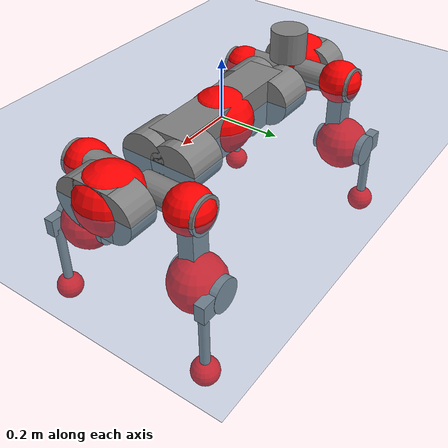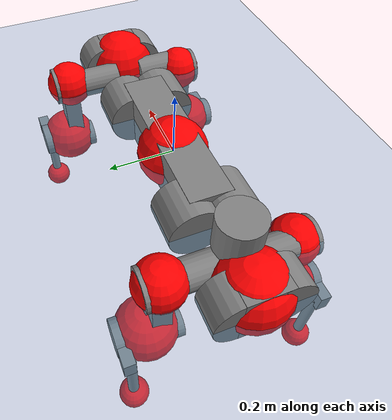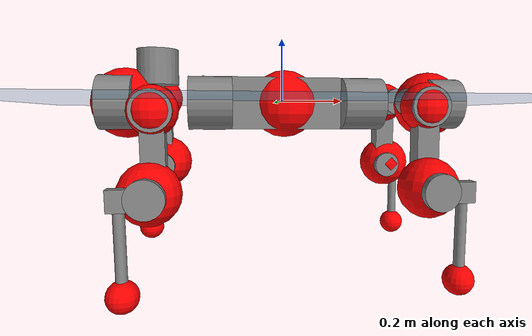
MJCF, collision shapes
<mujoco model="anymal_c">
  <compiler angle="radian" assetdir="assets" balanceinertia="true" inertiafromgeom="false"/>

  <option timestep="0.005" density="1.2" viscosity="2e-05"/>

  <size nkey="1"/>

  <visual>
    <quality shadowsize="8192"/>
    <map shadowclip="0.5"/>
  </visual>

  <default>
    <default class="/">
      <material specular="0" shininess="0.25"/>
      <geom contype="0" conaffinity="0" group="1" solref="-1000 -80"/>
      <site size="0.01 0.005 0.005" group="5"/>
      <general forcelimited="true" forcerange="-80 80" biastype="affine" gainprm="80" biasprm="0 -80 -2"/>
      <default class="anymal_c">
        <joint armature="0.01" damping="0.01" frictionloss="0.1"/>
        <default class="visual">
          <geom type="mesh" group="2"/>
          <default class="visual_zflip"/>
        </default>
        <default class="collision">
          <geom type="cylinder" group="3"/>
          <default class="foot">
            <geom size="0.03 0 0" type="sphere" condim="6" priority="1" friction="0.8 0.02 0.01" solimp="0.015 1 0.03"/>
          </default>
        </default>
      </default>
      <default class="reward_collision_sphere">
        <geom group="5" rgba="1 0 0 1"/>
      </default>
    </default>
  </default>

  <asset>
    <texture type="skybox" colorspace="auto" name="//unnamed_texture_0" builtin="gradient" rgb1="0.95 0.95 0.95" rgb2="0.95 0.95 0.95" width="100" height="600"/>
    <texture type="2d" colorspace="auto" name="texplane" builtin="checker" rgb1="0.345 0.575 0.748" rgb2="0.345 0.575 0.748" markrgb="1 1 1" width="512" height="512"/>
    <texture type="2d" colorspace="linear" name="base" file="base.png"/>
    <texture type="2d" colorspace="linear" name="top_shell" file="top_shell.png"/>
    <texture type="2d" colorspace="linear" name="bottom_shell" file="bottom_shell.png"/>
    <texture type="2d" colorspace="linear" name="remote" file="remote.png"/>
    <texture type="2d" colorspace="linear" name="hatch" file="hatch.png"/>
    <texture type="2d" colorspace="linear" name="handle" file="handle.png"/>
    <texture type="2d" colorspace="linear" name="face" file="face.png"/>
    <texture type="2d" colorspace="linear" name="battery" file="battery.png"/>
    <texture type="2d" colorspace="linear" name="lidar_cage" file="lidar_cage.png"/>
    <texture type="2d" colorspace="linear" name="depth_camera" file="depth_camera.png"/>
    <texture type="2d" colorspace="linear" name="wide_angle_camera" file="wide_angle_camera.png"/>
    <texture type="2d" colorspace="linear" name="lidar" file="lidar.png"/>
    <texture type="2d" colorspace="linear" name="drive" file="drive.png"/>
    <texture type="2d" colorspace="linear" name="hip_l" file="hip_l.png"/>
    <texture type="2d" colorspace="linear" name="shank_l" file="shank_l.png"/>
    <texture type="2d" colorspace="linear" name="foot" file="foot.png"/>
    <texture type="2d" colorspace="linear" name="thigh" file="thigh.png"/>
    <texture type="2d" colorspace="linear" name="shank_r" file="shank_r.png"/>
    <texture type="2d" colorspace="linear" name="hip_r" file="hip_r.png"/>
    <material name="MatPlane" class="/" texture="texplane" texuniform="true" texrepeat="2 2" specular="0.9" shininess="0.5"/>
    <material name="black_plastic" class="/" rgba="0.007 0.007 0.007 1"/>
    <material name="green" class="/" rgba="0.052 0.178 0.033 1"/>
    <material name="red" class="/" rgba="0.178 0.006 0.005 1"/>
    <material name="yellow" class="/" rgba="0.178 0.119 0.006 1"/>
    <material name="lwl" class="/" rgba="0.8 0.8 0.8 1"/>
    <material name="base" class="/" texture="base"/>
    <material name="top_shell" class="/" texture="top_shell"/>
    <material name="bottom_shell" class="/" texture="bottom_shell"/>
    <material name="hip_l" class="/" texture="hip_l"/>
    <material name="thigh" class="/" texture="thigh"/>
    <material name="shank_l" class="/" texture="shank_l"/>
    <material name="foot" class="/" texture="foot"/>
    <material name="hip_r" class="/" texture="hip_r"/>
    <material name="shank" class="/" texture="shank_r"/>
    <material name="hatch" class="/" texture="hatch"/>
    <material name="remote" class="/" texture="remote"/>
    <material name="handle" class="/" texture="handle"/>
    <material name="face" class="/" texture="face"/>
    <material name="depth_camera" class="/" texture="depth_camera"/>
    <material name="wide_angle_camera" class="/" texture="wide_angle_camera"/>
    <material name="battery" class="/" texture="battery"/>
    <material name="lidar_cage" class="/" texture="lidar_cage"/>
    <material name="lidar" class="/" texture="lidar"/>
    <material name="drive" class="/" texture="drive"/>
    <mesh name="base_0" class="/" file="base_0.obj"/>
    <mesh name="base_1" class="/" file="base_1.obj"/>
    <mesh name="base_2" class="/" file="base_2.obj"/>
    <mesh name="base_3" class="/" file="base_3.obj"/>
    <mesh name="base_4" class="/" file="base_4.obj"/>
    <mesh name="base_5" class="/" file="base_5.obj"/>
    <mesh name="top_shell" class="/" file="top_shell.obj"/>
    <mesh name="bottom_shell" class="/" file="bottom_shell.obj"/>
    <mesh name="remote" class="/" file="remote.obj"/>
    <mesh name="handle" class="/" file="handle.obj"/>
    <mesh name="face" class="/" file="face.obj"/>
    <mesh name="wide_angle_camera" class="/" file="wide_angle_camera.obj"/>
    <mesh name="depth_camera" class="/" file="depth_camera.obj"/>
    <mesh name="battery" class="/" file="battery.obj"/>
    <mesh name="lidar_cage" class="/" file="lidar_cage.obj"/>
    <mesh name="lidar" class="/" file="lidar.obj"/>
    <mesh name="drive" class="/" file="drive.obj"/>
    <mesh name="hip_l" class="/" file="hip_l.obj"/>
    <mesh name="thigh" class="/" file="thigh.obj"/>
    <mesh name="shank_l" class="/" file="shank_l.obj"/>
    <mesh name="foot" class="/" file="foot.obj"/>
    <mesh name="hip_r" class="/" file="hip_r.obj"/>
    <mesh name="hatch" class="/" file="hatch.obj"/>
    <mesh name="shank_r" class="/" file="shank_r.obj"/>
  </asset>

  <worldbody>
    <geom name="floor" class="/" size="100 100 0.125" type="plane" group="0" material="MatPlane"/>
    <light name="toplight_shadow" class="/" pos="0 0 5" dir="0.0990148 0.0990148 -0.990148" type="directional" ambient="0.04 0.04 0.04" diffuse="0.55 0.55 0.55" specular="0.12 0.12 0.12"/>
    <light name="toplight_fill" class="/" pos="0 0 5" dir="0.0990148 0.0990148 -0.990148" type="directional" castshadow="false" ambient="0.04 0.04 0.04" diffuse="0.3 0.3 0.3" specular="0.08 0.08 0.08"/>
    <body name="trunk" childclass="anymal_c" pos="0.00730015 -0.00105752 -0.00861551" quat="0.999988 0.00171433 0.000817051 -0.00456632">
      <inertial pos="0.0212542 0.0153692 0.0513951" quat="0.496447 0.498732 0.478267 0.525422" mass="10.7013" diaginertia="0.96562 0.187098 0.0752141"/>
      <joint name="//unnamed_joint_0" type="free" armature="0" damping="0" frictionloss="0"/>
      <geom name="//unnamed_geom_1" class="visual" material="green" mesh="base_0"/>
      <geom name="//unnamed_geom_2" class="visual" material="yellow" mesh="base_1"/>
      <geom name="//unnamed_geom_3" class="visual" material="red" mesh="base_2"/>
      <geom name="//unnamed_geom_4" class="visual" material="black_plastic" mesh="base_3"/>
      <geom name="//unnamed_geom_5" class="visual" material="lwl" mesh="base_4"/>
      <geom name="//unnamed_geom_6" class="visual" material="base" mesh="base_5"/>
      <geom name="trunk_1" class="collision" size="0.263011 0.0634854 0.0816241" type="box"/>
      <geom name="trunk_2" class="collision" size="0.0816241 0.0657527" pos="0.239481 0.0552463 0" quat="0.707107 0 0.707107 0"/>
      <geom name="trunk_3" class="collision" size="0.0816241 0.0657527" pos="-0.239481 0.0552463 0" quat="0.707107 0 0.707107 0"/>
      <geom name="trunk_4" class="collision" size="0.0816241 0.0657527" pos="0.239481 -0.0552463 0" quat="0.707107 0 0.707107 0"/>
      <geom name="trunk_5" class="collision" size="0.0816241 0.0657527" pos="-0.239481 -0.0552463 0" quat="0.707107 0 0.707107 0"/>
      <geom name="//unnamed_geom_12" class="visual" material="top_shell" mesh="top_shell"/>
      <geom name="//unnamed_geom_13" class="visual" material="bottom_shell" mesh="bottom_shell"/>
      <geom name="//unnamed_geom_14" class="visual" material="remote" mesh="remote"/>
      <geom name="//unnamed_geom_15" class="visual" material="handle" mesh="handle"/>
      <geom name="//unnamed_geom_16" class="visual" pos="0.45639 0 0" quat="1 0 0 0" material="face" mesh="face"/>
      <geom name="trunk_6" class="collision" size="0.0498814 0.0634854 0.0816241" pos="0.516949 0 0" type="box"/>
      <geom name="//unnamed_geom_18" class="collision" size="0.0816241 0.0498814" pos="0.516949 0.0552463 0" quat="0.707107 0 0.707107 0"/>
      <geom name="//unnamed_geom_19" class="collision" size="0.0816241 0.0498814" pos="0.516949 -0.0552463 0" quat="0.707107 0 0.707107 0"/>
      <geom name="//unnamed_geom_20" class="visual" pos="0.508294 0 -0.0221946" quat="0.965926 0 0.258819 0" material="depth_camera" mesh="depth_camera"/>
      <geom name="//unnamed_geom_21" class="visual" pos="0.564845 0 0.0124327" material="wide_angle_camera" mesh="wide_angle_camera"/>
      <geom name="//unnamed_geom_22" class="visual_zflip" pos="-0.45639 0 0" quat="0 0 0 1" material="face" mesh="face"/>
      <geom name="trunk_7" class="collision" size="0.0498814 0.0634854 0.0816241" pos="-0.516949 0 0" quat="0 0 0 1" type="box"/>
      <geom name="//unnamed_geom_24" class="collision" size="0.0816241 0.0498814" pos="-0.516949 -0.0552463 0" quat="0 -0.707107 0 0.707107"/>
      <geom name="//unnamed_geom_25" class="collision" size="0.0816241 0.0498814" pos="-0.516949 0.0552463 0" quat="0 -0.707107 0 0.707107"/>
      <geom name="//unnamed_geom_26" class="visual" pos="-0.508294 0 -0.0221946" quat="0 -0.258819 0 0.965926" material="depth_camera" mesh="depth_camera"/>
      <geom name="//unnamed_geom_27" class="visual_zflip" pos="-0.564845 0 0.0124327" quat="0 0 0 1" material="wide_angle_camera" mesh="wide_angle_camera"/>
      <geom name="//unnamed_geom_28" class="visual" material="battery" mesh="battery"/>
      <geom name="//unnamed_geom_29" class="visual" pos="0 0.0562417 0.0261825" quat="0.683013 -0.183013 0.183013 0.683013" material="depth_camera" mesh="depth_camera"/>
      <geom name="//unnamed_geom_30" class="visual" pos="0 -0.0562417 0.0261825" quat="0.683013 0.183013 0.183013 -0.683013" material="depth_camera" mesh="depth_camera"/>
      <geom name="//unnamed_geom_31" class="visual" pos="-0.400787 0 0.0610423" quat="1 0 0 0" material="lidar_cage" mesh="lidar_cage"/>
      <geom name="trunk_8" class="collision" size="0.0634854 0.0544161" pos="-0.400787 0 0.110873"/>
      <geom name="//unnamed_geom_33" class="visual" pos="-0.400787 -0.000122509 0.118098" quat="0.707107 0 0 -0.707107" material="lidar" mesh="lidar"/>
      <geom name="//unnamed_geom_34" class="visual" pos="0.330209 0.0820949 -7.11985e-10" quat="0.258819 0.965926 0 0" material="drive" mesh="drive"/>
      <geom name="//unnamed_geom_35" class="visual" pos="0.330209 -0.0820949 7.11985e-10" quat="0.258819 -0.965926 0 0" material="drive" mesh="drive"/>
      <geom name="//unnamed_geom_36" class="visual" pos="-0.330209 0.0820949 7.11985e-10" quat="0 0 0.965926 -0.258819" material="drive" mesh="drive"/>
      <geom name="//unnamed_geom_37" class="visual" pos="-0.330209 -0.0820949 -7.11985e-10" quat="0 0 -0.965926 -0.258819" material="drive" mesh="drive"/>
      <geom name="//unnamed_geom_38" class="visual" pos="0.127723 0 0.060627" quat="1 0 0 0" material="hatch" mesh="hatch"/>
      <geom name="//unnamed_geom_39" class="reward_collision_sphere" size="0.108832"/>
      <geom name="//unnamed_geom_40" class="reward_collision_sphere" size="0.108832" pos="0.495478 0 0"/>
      <geom name="//unnamed_geom_41" class="reward_collision_sphere" size="0.108832" pos="-0.495478 0 0"/>
      <site name="imu" pos="0.191224 0.00693759 0.120875" size="0.00906934"/>
      <camera name="track" pos="0 -1.57847 0" quat="0.707107 0.707107 0 0" mode="trackcom"/>
      <camera name="ego_camera" pos="0.495478 0 -0.0332203" quat="-0.5 -0.5 0.5 0.5"/>
      <body name="LF_HIP" pos="0.344093 0.0964912 0.0103613" quat="0.26055 0.965459 -0.000934547 0.00164152">
        <inertial pos="0.0627341 0.00168411 -0.00265611" quat="-0.125994 0.709381 -0.137198 0.679765" mass="2.21255" diaginertia="0.0113383 0.00219006 0.00158417"/>
        <joint name="LF_HAA" pos="0 0 0" axis="0.99988 0.00588982 -0.0143615" stiffness="0.0625039" range="-0.712518 0.298891" armature="0.00761314" damping="0" frictionloss="0.147657"/>
        <geom name="//unnamed_geom_42" class="visual" pos="0 -4.18828e-05 6.87922e-06" quat="0.258819 -0.965926 0 0" material="hip_l" mesh="hip_l"/>
        <geom name="//unnamed_geom_43" class="visual" pos="0.0659537 -0.0758258 -0.0440834" quat="0.183013 -0.683013 0.683013 0.183013" material="drive" mesh="drive"/>
        <geom name="//unnamed_geom_44" class="collision" size="0.0453467 0.0634854" pos="0.0659537 -0.00943907 -0.00573465" quat="-0.353553 -0.612372 0.612372 -0.353553"/>
        <body name="LF_THIGH" pos="0.0772283 -0.0746143 -0.0450415" quat="0.188522 -0.679112 0.684313 0.187035">
          <inertial pos="0.0308317 8.94925e-05 -0.215109" quat="0.993987 0.0238624 -0.103926 0.0249109" mass="2.8065" diaginertia="0.0519588 0.0117962 0.00156909"/>
          <joint name="LF_HFE" pos="0 0 0" axis="0.999394 -0.00444436 0.0345316" stiffness="0.0259664" range="-3.44995 2.89101" armature="0.0121711" damping="0" frictionloss="0.142068"/>
          <geom name="//unnamed_geom_45" class="visual" pos="0.00620418 9.77634e-06 0" quat="0.707107 0 0 -0.707107" material="thigh" mesh="thigh"/>
          <geom name="//unnamed_geom_46" class="collision" size="0.0589507 0.0362774" pos="0.0440425 0 0" quat="0.5 0.5 -0.5 -0.5"/>
          <geom name="//unnamed_geom_47" class="collision" size="0.03401 0.027208 0.128163" pos="0.0330319 0 -0.117362" quat="0.707107 0 0 -0.707107" type="box"/>
          <geom name="//unnamed_geom_48" class="visual" pos="0.110437 0 -0.236695" quat="1 0 0 0" material="drive" mesh="drive"/>
          <geom name="//unnamed_geom_49" class="collision" size="0.0453467 0.0634854" pos="0.0333622 0 -0.236695" quat="0.707107 0 0.707107 0"/>
          <geom name="//unnamed_geom_50" class="reward_collision_sphere" size="0.0725547" pos="0.0275266 0 0"/>
          <body name="LF_SHANK" pos="0.111618 -0.0158575 -0.234085" quat="0.999994 -2.08724e-05 0.00201365 0.00279216">
            <inertial pos="0.00792682 -0.0547978 -0.0567326" quat="0.992953 -0.117727 -0.00286588 -0.0132611" mass="0.461697" diaginertia="0.0209442 0.00286816 0.000436529"/>
            <joint name="LF_KFE" pos="0 0 0" axis="0.999745 -0.0192071 0.0118967" stiffness="0.0756739" range="-3.3877 3.09512" armature="0.00564294" damping="0" frictionloss="0.0803139"/>
            <geom name="//unnamed_geom_51" class="visual" pos="0.00202305 0.010787 0" quat="0.707107 0 0 -0.707107" material="shank_l" mesh="shank_l"/>
            <geom name="LF_kfe_act" class="collision" size="0.0544161 0.0181387" pos="0.0220213 0 0" quat="0.5 0.5 -0.5 -0.5"/>
            <geom name="//unnamed_geom_53" class="collision" size="0.0521478 0.030609 0.0172318" pos="0.0220213 -0.0453801 0" quat="0.5 0.5 -0.5 -0.5" type="box"/>
            <geom name="//unnamed_geom_54" class="visual" pos="0.0143684 -0.0659368 -0.280687" quat="0.382683 0 0 -0.92388" material="foot" mesh="foot"/>
            <geom name="LF_calf" class="collision" size="0.0158714 0.128106" pos="0.0143689 -0.0694131 -0.140343" quat="0.707107 0 0 -0.707107"/>
            <geom name="LF_foot" class="foot" size="0.0254131" pos="0.0143689 -0.0694131 -0.262" quat="0.707107 0 0 -0.707107"/>
            <geom name="//unnamed_geom_57" class="reward_collision_sphere" size="0.0906934" pos="-0.0550531 0 0"/>
            <geom name="//unnamed_geom_58" class="reward_collision_sphere" size="0.0453467" pos="0.0143689 -0.0694131 -0.262"/>
            <site name="LF_foot" class="foot" pos="0.0143689 -0.0694131 -0.262" quat="0.707107 0 0 -0.707107" size="0.00906934"/>
          </body>
        </body>
      </body>
      <body name="RF_HIP" pos="0.347099 -0.0869286 0.00661504" quat="0.258924 -0.965898 -1.20617e-05 0.000225853">
        <inertial pos="0.0746008 0.0308224 0.00550752" quat="0.120962 0.719699 0.0563163 0.681344" mass="2.02271" diaginertia="0.0103612 0.00111133 0.00141187"/>
        <joint name="RF_HAA" pos="0 0 0" axis="0.997439 -0.0413443 -0.0583676" range="-0.60543 0.737717" armature="0.00735547" damping="0.0692627" frictionloss="0.0503201"/>
        <geom name="//unnamed_geom_59" class="visual" pos="0 4.18825e-05 6.8792e-06" quat="0.258819 0.965926 0 0" material="hip_r" mesh="hip_r"/>
        <geom name="//unnamed_geom_60" class="visual" pos="0.0659536 0.0758258 -0.0440834" quat="0.183013 0.683013 0.683013 -0.183013" material="drive" mesh="drive"/>
        <geom name="//unnamed_geom_61" class="collision" size="0.0453467 0.0634854" pos="0.0659537 0.00943907 -0.00573465" quat="-0.353553 0.612372 0.612372 0.353553"/>
        <body name="RF_THIGH" pos="0.0550295 0.0681427 -0.0199447" quat="0.17573 0.683472 0.68434 -0.183478">
          <inertial pos="0.0172994 0.00800973 -0.192725" quat="0.997336 0.022697 -0.0444204 0.0532248" mass="2.03304" diaginertia="0.0607327 0.011686 0.00141154"/>
          <joint name="RF_HFE" pos="0 0 0" axis="0.999934 0.0114224 0.00153119" stiffness="0.000884595" range="-3.31213 3.2662" armature="0.0140367" damping="0.0160229" frictionloss="0.047445"/>
          <geom name="//unnamed_geom_62" class="visual" pos="0.00620418 9.77634e-06 0" quat="0.707107 0 0 -0.707107" material="thigh" mesh="thigh"/>
          <geom name="//unnamed_geom_63" class="collision" size="0.0589507 0.0362774" pos="0.0440425 0 0" quat="0.5 0.5 0.5 0.5"/>
          <geom name="//unnamed_geom_64" class="collision" size="0.03401 0.027208 0.128163" pos="0.0330319 0 -0.117362" quat="0.707107 0 0 0.707107" type="box"/>
          <geom name="//unnamed_geom_65" class="visual" pos="0.110437 0 -0.236695" quat="1 0 0 0" material="drive" mesh="drive"/>
          <geom name="//unnamed_geom_66" class="collision" size="0.0453467 0.0634854" pos="0.0333622 0 -0.236695" quat="0.707107 0 0.707107 0"/>
          <geom name="//unnamed_geom_67" class="reward_collision_sphere" size="0.0725547" pos="0.0275266 0 0"/>
          <body name="RF_SHANK" pos="0.122046 -0.00137023 -0.241765" quat="0.999984 -0.00274575 0.0046418 0.00178176">
            <inertial pos="0.0199037 0.0490096 -0.0669521" quat="0.979883 0.18263 -0.00738506 0.0801336" mass="0.309485" diaginertia="0.0119523 0.00262255 0.000357444"/>
            <joint name="RF_KFE" pos="0 0 0" axis="0.999984 0.00374954 0.00433831" stiffness="0.0820145" range="-2.80309 3.37425" armature="0.0018767" damping="0" frictionloss="0.0456115"/>
            <geom name="//unnamed_geom_68" class="visual" pos="0.00202304 -0.010787 0" quat="0.707107 0 0 0.707107" material="shank" mesh="shank_r"/>
            <geom name="RF_kfe_act" class="collision" size="0.0544161 0.0181387" pos="0.0220213 0 0" quat="0.5 0.5 0.5 0.5"/>
            <geom name="//unnamed_geom_70" class="collision" size="0.0521478 0.030609 0.0172318" pos="0.0220213 0.0453801 0" quat="0.5 0.5 0.5 0.5" type="box"/>
            <geom name="//unnamed_geom_71" class="visual" pos="0.0143694 0.0659368 -0.280687" quat="0.382683 0 0 0.92388" material="foot" mesh="foot"/>
            <geom name="RF_calf" class="collision" size="0.0158714 0.128106" pos="0.0143689 0.0694131 -0.140343" quat="0.707107 0 0 0.707107"/>
            <geom name="RF_foot" class="foot" size="0.0413352" pos="0.0143689 0.0694131 -0.262" quat="0.707107 0 0 0.707107"/>
            <geom name="//unnamed_geom_74" class="reward_collision_sphere" size="0.0906934" pos="-0.0550531 0 0"/>
            <geom name="//unnamed_geom_75" class="reward_collision_sphere" size="0.0453467" pos="0.0143689 0.0694131 -0.262"/>
            <site name="RF_foot" class="foot" pos="0.0143689 0.0694131 -0.262" quat="0.707107 0 0 0.707107" size="0.00906934"/>
          </body>
        </body>
      </body>
      <body name="LH_HIP" pos="-0.345859 0.0949995 0.0151528" quat="0.00152866 -0.000327659 0.965857 -0.259071">
        <inertial pos="0.0627325 -0.000732145 0.0103868" quat="0.15133 0.72342 0.0966234 0.666653" mass="1.65373" diaginertia="0.00571981 0.00128741 0.00116582"/>
        <joint name="LH_HAA" pos="0 0 0" axis="0.997444 0.0641149 0.0315308" stiffness="0.0478136" range="-0.448786 0.546918" armature="0.0104302" damping="0.0878946" frictionloss="0.0948384"/>
        <geom name="//unnamed_geom_76" class="visual" pos="0 4.18825e-05 6.8792e-06" quat="-0.258819 -0.965926 0 0" material="hip_r" mesh="hip_r"/>
        <geom name="//unnamed_geom_77" class="visual" pos="0.0659536 0.0758258 -0.0440834" quat="0.183013 0.683013 0.683013 -0.183013" material="drive" mesh="drive"/>
        <geom name="//unnamed_geom_78" class="collision" size="0.0453467 0.0634854" pos="0.0659537 0.00943907 -0.00573465" quat="-0.353553 0.612372 0.612372 0.353553"/>
        <body name="LH_THIGH" pos="0.0672929 0.0668489 -0.0446868" quat="0.181773 0.680637 0.684887 -0.186067">
          <inertial pos="0.0524091 -0.00844398 -0.186759" quat="0.992148 -0.00973762 -0.0778416 0.0974076" mass="2.97564" diaginertia="0.0696823 0.00891633 0.0017078"/>
          <joint name="LH_HFE" pos="0 0 0" axis="0.999986 -0.0019696 0.00499936" range="-2.92721 3.38895" armature="0.00622503" damping="0.0759903" frictionloss="0.0940666"/>
          <geom name="//unnamed_geom_79" class="visual" pos="0.00620418 9.77634e-06 0" quat="0.707107 0 0 -0.707107" material="thigh" mesh="thigh"/>
          <geom name="//unnamed_geom_80" class="collision" size="0.0589507 0.0362774" pos="0.0440425 0 0" quat="0.5 0.5 -0.5 -0.5"/>
          <geom name="//unnamed_geom_81" class="collision" size="0.03401 0.027208 0.128163" pos="0.0330319 0 -0.117362" quat="0.707107 0 0 -0.707107" type="box"/>
          <geom name="//unnamed_geom_82" class="visual" pos="0.110437 0 -0.236695" quat="1 0 0 0" material="drive" mesh="drive"/>
          <geom name="//unnamed_geom_83" class="collision" size="0.0453467 0.0634854" pos="0.0333622 0 -0.236695" quat="0.707107 0 0.707107 0"/>
          <geom name="//unnamed_geom_84" class="reward_collision_sphere" size="0.0725547" pos="0.0275266 0 0"/>
          <body name="LH_SHANK" pos="0.119675 -0.00900939 -0.228532" quat="1 -6.5025e-06 -1.48184e-05 -4.73315e-05">
            <inertial pos="-0.00465728 0.0327325 -0.0586994" quat="0.985093 0.167237 0.0294826 0.0274457" mass="0.339153" diaginertia="0.0146101 0.00175395 0.00030513"/>
            <joint name="LH_KFE" pos="0 0 0" axis="0.999799 0.019275 -0.00549706" range="-3.44469 3.39714" armature="0.00145301" damping="0" frictionloss="0.157406"/>
            <geom name="//unnamed_geom_85" class="visual" pos="0.00202304 -0.010787 0" quat="-0.707107 0 0 -0.707107" material="shank" mesh="shank_r"/>
            <geom name="LH_kfe_act" class="collision" size="0.0544161 0.0181387" pos="0.0220213 0 0" quat="0.5 0.5 -0.5 -0.5"/>
            <geom name="//unnamed_geom_87" class="collision" size="0.0521478 0.030609 0.0172318" pos="0.0220213 0.0453801 0" quat="0.5 0.5 -0.5 -0.5" type="box"/>
            <geom name="//unnamed_geom_88" class="visual" pos="0.0143694 0.0659368 -0.280687" quat="-0.382683 0 0 -0.92388" material="foot" mesh="foot"/>
            <geom name="LH_calf" class="collision" size="0.0158714 0.128106" pos="0.0143689 0.0694131 -0.140343" quat="0.707107 0 0 -0.707107"/>
            <geom name="LH_foot" class="foot" size="0.0178546" pos="0.0143689 0.0694131 -0.262" quat="0.707107 0 0 -0.707107"/>
            <geom name="//unnamed_geom_91" class="reward_collision_sphere" size="0.0906934" pos="-0.0550531 0 0"/>
            <geom name="//unnamed_geom_92" class="reward_collision_sphere" size="0.0453467" pos="0.0143689 0.0694131 -0.262"/>
            <site name="LH_foot" class="foot" pos="0.0143689 0.0694131 -0.262" quat="0.707107 0 0 -0.707107" size="0.00906934"/>
          </body>
        </body>
      </body>
      <body name="RH_HIP" pos="-0.34873 -0.0856924 -0.00947237" quat="-0.000188509 -0.00133288 -0.966275 -0.257508">
        <inertial pos="0.0740431 -0.0230814 0.0102589" quat="-0.0445855 0.684833 -0.151536 0.711374" mass="2.07678" diaginertia="0.0114944 0.00179555 0.00160938"/>
        <joint name="RH_HAA" pos="0 0 0" axis="0.99668 0.0483362 -0.0655164" range="-0.403836 0.271938" armature="0.0136602" damping="0.0640393" frictionloss="0.0948304"/>
        <geom name="//unnamed_geom_93" class="visual" pos="0 -4.18828e-05 6.87922e-06" quat="-0.258819 0.965926 0 0" material="hip_l" mesh="hip_l"/>
        <geom name="//unnamed_geom_94" class="visual" pos="0.0659537 -0.0758258 -0.0440834" quat="-0.183013 0.683013 -0.683013 -0.183013" material="drive" mesh="drive"/>
        <geom name="//unnamed_geom_95" class="collision" size="0.0453467 0.0634854" pos="0.0659537 -0.00943907 -0.00573465" quat="0.353553 0.612372 -0.612372 0.353553"/>
        <body name="RH_THIGH" pos="0.0485705 -0.0659044 -0.0190602" quat="-0.187528 0.682055 -0.684247 -0.177313">
          <inertial pos="0.0309182 -0.0115286 -0.211029" quat="0.993379 -0.00870201 -0.0812153 0.0807867" mass="3.08666" diaginertia="0.0660284 0.0110962 0.00202581"/>
          <joint name="RH_HFE" pos="0 0 0" axis="0.999555 0.0298107 0.000733854" stiffness="0.0226359" range="-3.37322 3.30109" armature="0.0117734" damping="0" frictionloss="0.0975191"/>
          <geom name="//unnamed_geom_96" class="visual" pos="0.00620418 9.77634e-06 0" quat="0.707107 0 0 -0.707107" material="thigh" mesh="thigh"/>
          <geom name="//unnamed_geom_97" class="collision" size="0.0589507 0.0362774" pos="0.0440425 0 0" quat="0.5 0.5 0.5 0.5"/>
          <geom name="//unnamed_geom_98" class="collision" size="0.03401 0.027208 0.128163" pos="0.0330319 0 -0.117362" quat="0.707107 0 0 0.707107" type="box"/>
          <geom name="//unnamed_geom_99" class="visual" pos="0.110437 0 -0.236695" quat="1 0 0 0" material="drive" mesh="drive"/>
          <geom name="//unnamed_geom_100" class="collision" size="0.0453467 0.0634854" pos="0.0333622 0 -0.236695" quat="0.707107 0 0.707107 0"/>
          <geom name="//unnamed_geom_101" class="reward_collision_sphere" size="0.0725547" pos="0.0275266 0 0"/>
          <body name="RH_SHANK" pos="0.103538 -0.0143429 -0.231022" quat="0.999966 0.000434012 0.00550223 -0.00616879">
            <inertial pos="-0.00847356 -0.0384699 -0.074576" quat="0.98973 -0.136664 0.0181514 0.0377766" mass="0.412885" diaginertia="0.0192127 0.00277471 0.000493439"/>
            <joint name="RH_KFE" pos="0 0 0" axis="0.999723 -0.0234194 -0.00235242" range="-3.13567 2.81917" armature="0.00933329" damping="0" frictionloss="0.0459813"/>
            <geom name="//unnamed_geom_102" class="visual" pos="0.00202305 0.010787 0" quat="0.707107 0 0 -0.707107" material="shank_l" mesh="shank_l"/>
            <geom name="RH_kfe_act" class="collision" size="0.0544161 0.0181387" pos="0.0220213 0 0" quat="0.5 0.5 0.5 0.5"/>
            <geom name="//unnamed_geom_104" class="collision" size="0.0521478 0.030609 0.0172318" pos="0.0220213 -0.0453801 0" quat="0.5 0.5 0.5 0.5" type="box"/>
            <geom name="//unnamed_geom_105" class="visual" pos="0.0143684 -0.0659368 -0.280687" quat="0.382683 0 0 -0.92388" material="foot" mesh="foot"/>
            <geom name="RH_calf" class="collision" size="0.0158714 0.128106" pos="0.0143689 -0.0694131 -0.140343" quat="0.707107 0 0 0.707107"/>
            <geom name="RH_foot" class="foot" size="0.0401765" pos="0.0143689 -0.0694131 -0.262" quat="0.707107 0 0 0.707107"/>
            <geom name="//unnamed_geom_108" class="reward_collision_sphere" size="0.0906934" pos="-0.0550531 0 0"/>
            <geom name="//unnamed_geom_109" class="reward_collision_sphere" size="0.0453467" pos="0.0143689 -0.0694131 -0.262"/>
            <site name="RH_foot" class="foot" pos="0.0143689 -0.0694131 -0.262" quat="0.707107 0 0 0.707107" size="0.00906934"/>
          </body>
        </body>
      </body>
    </body>
  </worldbody>

  <contact>
    <pair class="/" geom1="floor" geom2="LF_foot" name="//unnamed_contact_0"/>
    <pair class="/" geom1="floor" geom2="RF_foot" name="//unnamed_contact_1"/>
    <pair class="/" geom1="floor" geom2="LH_foot" name="//unnamed_contact_2"/>
    <pair class="/" geom1="floor" geom2="RH_foot" name="//unnamed_contact_3"/>
  </contact>

  <actuator>
    <general name="LF_HAA" class="/" joint="LF_HAA" forcerange="-110.678 110.678" gainprm="93.1859" biasprm="0 -93.1859 -2.32446"/>
    <general name="LF_HFE" class="/" joint="LF_HFE" forcerange="-119.094 119.094" gainprm="93.1859" biasprm="0 -93.1859 -2.32446"/>
    <general name="LF_KFE" class="/" joint="LF_KFE" forcerange="-95.5809 95.5809" gainprm="93.1859" biasprm="0 -93.1859 -2.32446"/>
    <general name="RF_HAA" class="/" joint="RF_HAA" forcerange="-65.2814 65.2814" gainprm="93.1859" biasprm="0 -93.1859 -2.32446"/>
    <general name="RF_HFE" class="/" joint="RF_HFE" forcerange="-37.0576 37.0576" gainprm="93.1859" biasprm="0 -93.1859 -2.32446"/>
    <general name="RF_KFE" class="/" joint="RF_KFE" forcerange="-89.7632 89.7632" gainprm="93.1859" biasprm="0 -93.1859 -2.32446"/>
    <general name="LH_HAA" class="/" joint="LH_HAA" forcerange="-77.7898 77.7898" gainprm="93.1859" biasprm="0 -93.1859 -2.32446"/>
    <general name="LH_HFE" class="/" joint="LH_HFE" forcerange="-109.141 109.141" gainprm="93.1859" biasprm="0 -93.1859 -2.32446"/>
    <general name="LH_KFE" class="/" joint="LH_KFE" forcerange="-48.7344 48.7344" gainprm="93.1859" biasprm="0 -93.1859 -2.32446"/>
    <general name="RH_HAA" class="/" joint="RH_HAA" forcerange="-86.9094 86.9094" gainprm="93.1859" biasprm="0 -93.1859 -2.32446"/>
    <general name="RH_HFE" class="/" joint="RH_HFE" forcerange="-31.034 31.034" gainprm="93.1859" biasprm="0 -93.1859 -2.32446"/>
    <general name="RH_KFE" class="/" joint="RH_KFE" forcerange="-54.5484 54.5484" gainprm="93.1859" biasprm="0 -93.1859 -2.32446"/>
  </actuator>

  <sensor>
    <gyro site="imu" name="imu_angular_velocity"/>
    <velocimeter site="imu" name="imu_linear_velocity"/>
    <framelinvel objtype="site" objname="LF_foot" name="LF_foot_global_linear_velocity"/>
    <framelinvel objtype="site" objname="RF_foot" name="RF_foot_global_linear_velocity"/>
    <framelinvel objtype="site" objname="LH_foot" name="LH_foot_global_linear_velocity"/>
    <framelinvel objtype="site" objname="RH_foot" name="RH_foot_global_linear_velocity"/>
  </sensor>

  <keyframe>
    <key name="home" qpos="0 0 0.55 1 0 0 0 0 0.4 -0.8 0 -0.4 0.8 0 -0.4 0.8 0 0.4 -0.8"/>
  </keyframe>
</mujoco>
